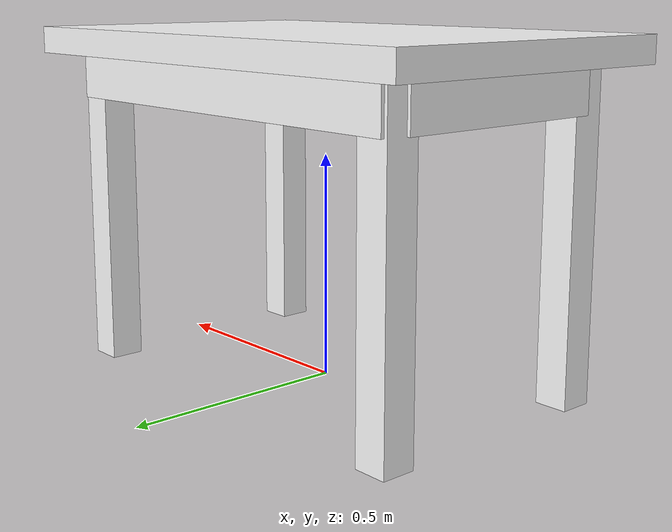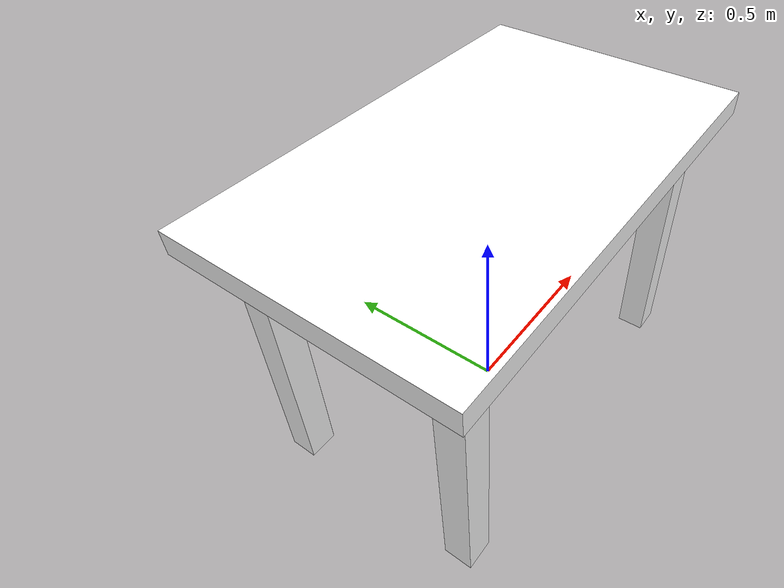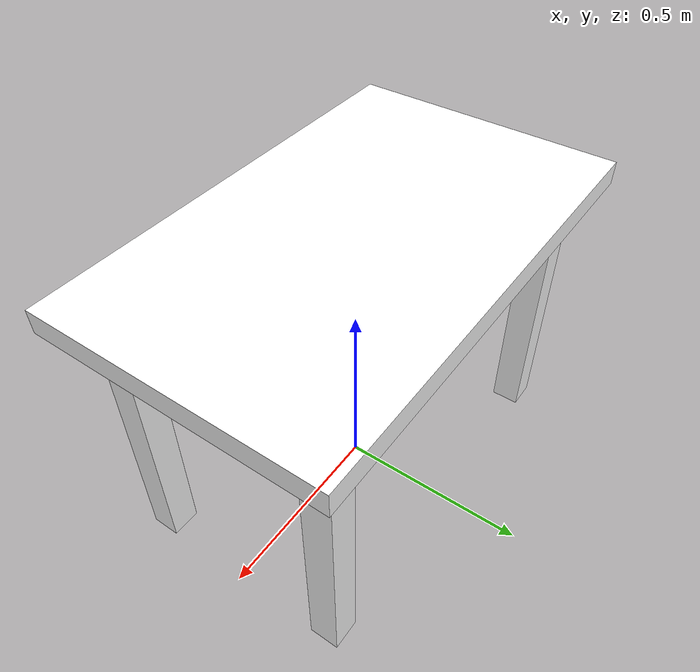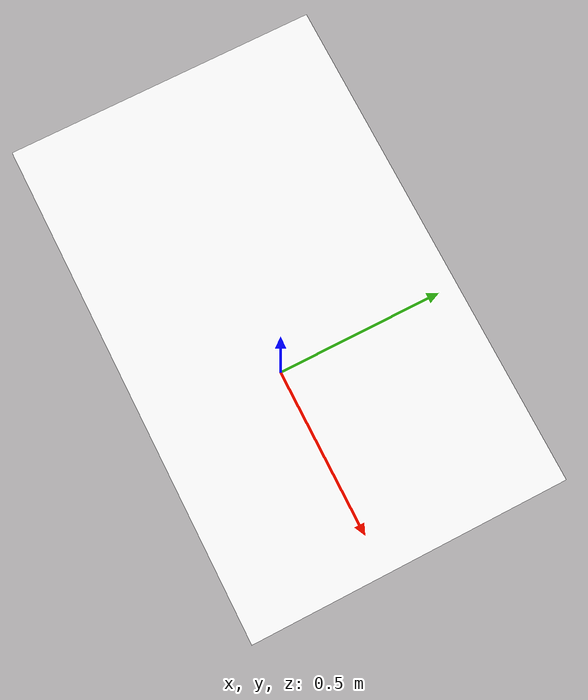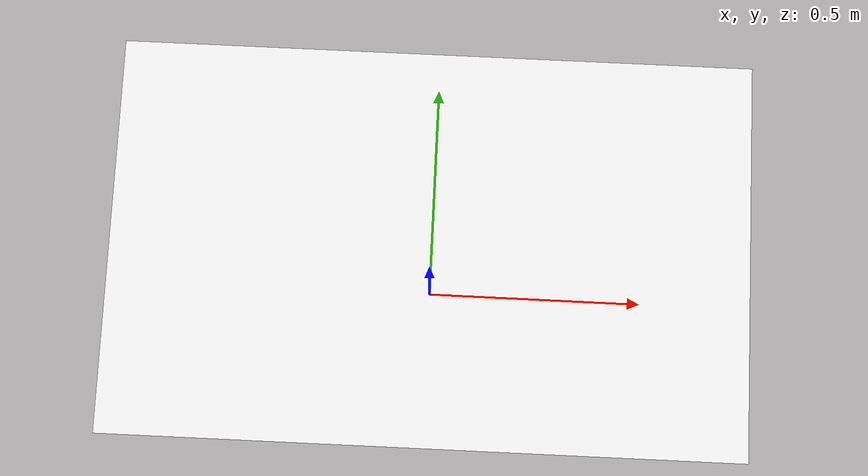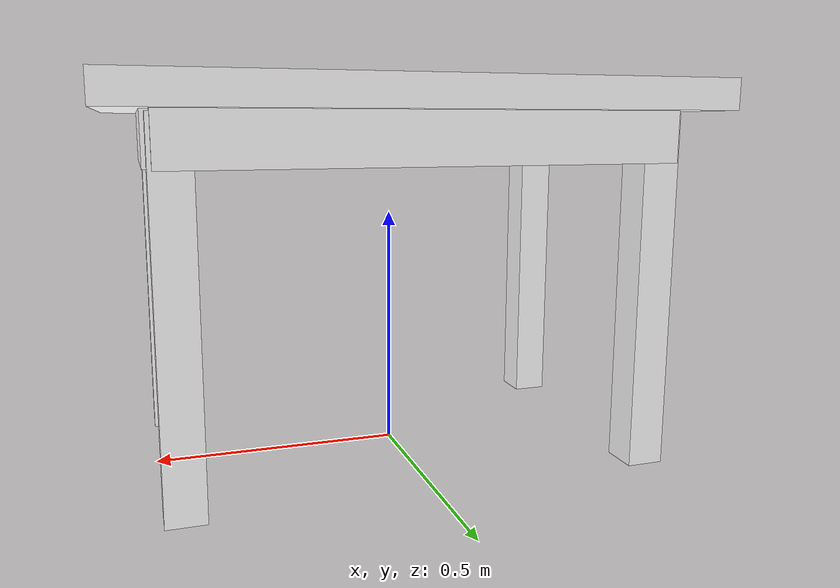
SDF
<?xml version="1.0"?>
<sdf version="1.9">
  <model name="small_table">
    <static>true</static>
    <link name="body">

      <collision name="top_collision">
        <pose>0 0 0.74 0 0 0</pose>
        <geometry><box><size>1.16 0.72 0.06</size></box></geometry>
      </collision>
      <collision name="apron_left_collision">
        <pose>0 0.28 0.66 0 0 0</pose>
        <geometry><box><size>0.98 0.05 0.10</size></box></geometry>
      </collision>
      <collision name="apron_right_collision">
        <pose>0 -0.28 0.66 0 0 0</pose>
        <geometry><box><size>0.98 0.05 0.10</size></box></geometry>
      </collision>
      <collision name="apron_front_collision">
        <pose>0.48 0 0.66 0 0 0</pose>
        <geometry><box><size>0.05 0.50 0.10</size></box></geometry>
      </collision>
      <collision name="apron_back_collision">
        <pose>-0.48 0 0.66 0 0 0</pose>
        <geometry><box><size>0.05 0.50 0.10</size></box></geometry>
      </collision>
      <visual name="top_visual">
        <pose>0 0 0.74 0 0 0</pose>
        <geometry><box><size>1.16 0.72 0.06</size></box></geometry>
        <material>
          <ambient>1 1 1 1</ambient>
          <diffuse>1 1 1 1</diffuse>
          <specular>0.05 0.05 0.05 1</specular>
          <pbr>
            <metal>
              <albedo_map>materials/textures/wood_albedo.png</albedo_map>
              <normal_map>materials/textures/wood_normal.png</normal_map>
              <roughness_map>materials/textures/wood_roughness.png</roughness_map>
              <metalness>0.0</metalness>
            </metal>
          </pbr>
        </material>
      </visual>

      <visual name="apron_left">
        <pose>0 0.28 0.66 0 0 0</pose>
        <geometry><box><size>0.98 0.05 0.10</size></box></geometry>
        <material><ambient>1 1 1 1</ambient><diffuse>1 1 1 1</diffuse><specular>0.05 0.05 0.05 1</specular><pbr><metal><albedo_map>materials/textures/wood_albedo.png</albedo_map><normal_map>materials/textures/wood_normal.png</normal_map><roughness_map>materials/textures/wood_roughness.png</roughness_map><metalness>0.0</metalness></metal></pbr></material>
      </visual>
      <visual name="apron_right">
        <pose>0 -0.28 0.66 0 0 0</pose>
        <geometry><box><size>0.98 0.05 0.10</size></box></geometry>
        <material><ambient>1 1 1 1</ambient><diffuse>1 1 1 1</diffuse><specular>0.05 0.05 0.05 1</specular><pbr><metal><albedo_map>materials/textures/wood_albedo.png</albedo_map><normal_map>materials/textures/wood_normal.png</normal_map><roughness_map>materials/textures/wood_roughness.png</roughness_map><metalness>0.0</metalness></metal></pbr></material>
      </visual>
      <visual name="apron_front">
        <pose>0.48 0 0.66 0 0 0</pose>
        <geometry><box><size>0.05 0.50 0.10</size></box></geometry>
        <material><ambient>1 1 1 1</ambient><diffuse>1 1 1 1</diffuse><specular>0.05 0.05 0.05 1</specular><pbr><metal><albedo_map>materials/textures/wood_albedo.png</albedo_map><normal_map>materials/textures/wood_normal.png</normal_map><roughness_map>materials/textures/wood_roughness.png</roughness_map><metalness>0.0</metalness></metal></pbr></material>
      </visual>
      <visual name="apron_back">
        <pose>-0.48 0 0.66 0 0 0</pose>
        <geometry><box><size>0.05 0.50 0.10</size></box></geometry>
        <material><ambient>1 1 1 1</ambient><diffuse>1 1 1 1</diffuse><specular>0.05 0.05 0.05 1</specular><pbr><metal><albedo_map>materials/textures/wood_albedo.png</albedo_map><normal_map>materials/textures/wood_normal.png</normal_map><roughness_map>materials/textures/wood_roughness.png</roughness_map><metalness>0.0</metalness></metal></pbr></material>
      </visual>

      <collision name="leg_fl">
        <pose>0.46 0.26 0.35 0 0 0</pose>
        <geometry><box><size>0.075 0.075 0.71</size></box></geometry>
      </collision>
      <collision name="leg_fr">
        <pose>0.46 -0.26 0.35 0 0 0</pose>
        <geometry><box><size>0.075 0.075 0.71</size></box></geometry>
      </collision>
      <collision name="leg_bl">
        <pose>-0.46 0.26 0.35 0 0 0</pose>
        <geometry><box><size>0.075 0.075 0.71</size></box></geometry>
      </collision>
      <collision name="leg_br">
        <pose>-0.46 -0.26 0.35 0 0 0</pose>
        <geometry><box><size>0.075 0.075 0.71</size></box></geometry>
      </collision>

      <visual name="leg_fl_visual">
        <pose>0.46 0.26 0.35 0 0 0</pose>
        <geometry><box><size>0.075 0.075 0.71</size></box></geometry>
        <material><ambient>1 1 1 1</ambient><diffuse>1 1 1 1</diffuse><specular>0.05 0.05 0.05 1</specular><pbr><metal><albedo_map>materials/textures/wood_albedo.png</albedo_map><normal_map>materials/textures/wood_normal.png</normal_map><roughness_map>materials/textures/wood_roughness.png</roughness_map><metalness>0.0</metalness></metal></pbr></material>
      </visual>
      <visual name="leg_fr_visual">
        <pose>0.46 -0.26 0.35 0 0 0</pose>
        <geometry><box><size>0.075 0.075 0.71</size></box></geometry>
        <material><ambient>1 1 1 1</ambient><diffuse>1 1 1 1</diffuse><specular>0.05 0.05 0.05 1</specular><pbr><metal><albedo_map>materials/textures/wood_albedo.png</albedo_map><normal_map>materials/textures/wood_normal.png</normal_map><roughness_map>materials/textures/wood_roughness.png</roughness_map><metalness>0.0</metalness></metal></pbr></material>
      </visual>
      <visual name="leg_bl_visual">
        <pose>-0.46 0.26 0.35 0 0 0</pose>
        <geometry><box><size>0.075 0.075 0.71</size></box></geometry>
        <material><ambient>1 1 1 1</ambient><diffuse>1 1 1 1</diffuse><specular>0.05 0.05 0.05 1</specular><pbr><metal><albedo_map>materials/textures/wood_albedo.png</albedo_map><normal_map>materials/textures/wood_normal.png</normal_map><roughness_map>materials/textures/wood_roughness.png</roughness_map><metalness>0.0</metalness></metal></pbr></material>
      </visual>
      <visual name="leg_br_visual">
        <pose>-0.46 -0.26 0.35 0 0 0</pose>
        <geometry><box><size>0.075 0.075 0.71</size></box></geometry>
        <material><ambient>1 1 1 1</ambient><diffuse>1 1 1 1</diffuse><specular>0.05 0.05 0.05 1</specular><pbr><metal><albedo_map>materials/textures/wood_albedo.png</albedo_map><normal_map>materials/textures/wood_normal.png</normal_map><roughness_map>materials/textures/wood_roughness.png</roughness_map><metalness>0.0</metalness></metal></pbr></material>
      </visual>

    </link>
  </model>
</sdf>
